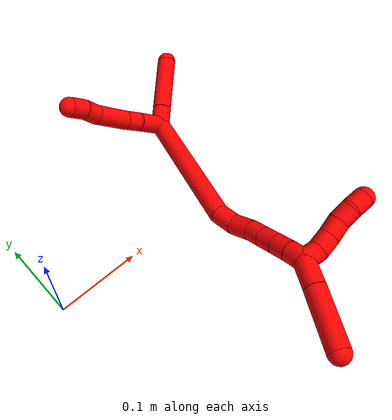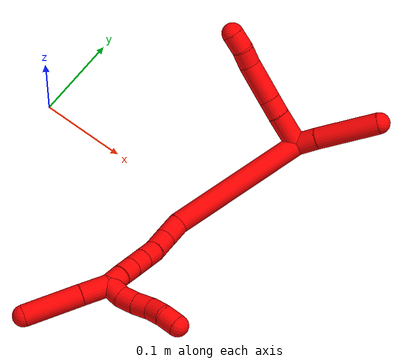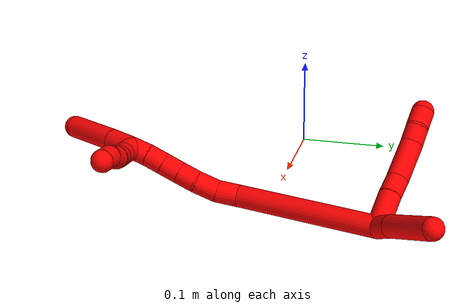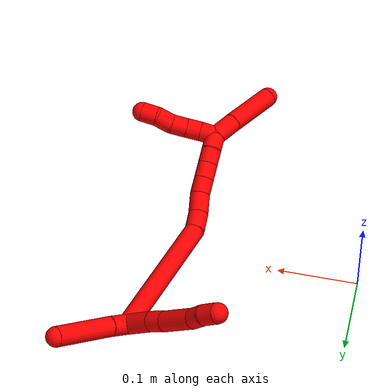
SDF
<sdf version="1.7">
 <world name="default">
  <model name="2">
   <static>0</static>
   <link name="2">
    <collision name="collision-cylinder-e_1_2_8">
     <pose>-0.006669 0.012753 -0.014196 -2.40967 -0.336212 0.83377</pose>
     <geometry><cylinder><radius>0.0125</radius><length>0.04043</length></cylinder></geometry>
     <surface>
      <friction><ode><mu>1.16</mu><mu2>1.16</mu2><slip1>0</slip1><slip2>0</slip2></ode></friction>
      <contact><ode><kp>1e+06</kp><kd>1</kd><max_vel>0</max_vel><min_depth>0.001</min_depth></ode></contact>
     </surface>
    </collision>
    <visual name="visual-cylinder-e_1_2_8">
     <pose>-0.006669 0.012753 -0.014196 -2.40967 -0.336212 0.83377</pose>
     <geometry><cylinder><radius>0.0125</radius><length>0.04043</length></cylinder></geometry>
     <material><ambient>1 0 0 1</ambient></material>
    </visual>
    <collision name="collision-cylinder-e_2_8_9">
     <pose>-0.016239 0.032765 -0.035764 -2.364 -0.273383 0.647894</pose>
     <geometry><cylinder><radius>0.0125</radius><length>0.02149</length></cylinder></geometry>
     <surface>
      <friction><ode><mu>1.16</mu><mu2>1.16</mu2><slip1>0</slip1><slip2>0</slip2></ode></friction>
      <contact><ode><kp>1e+06</kp><kd>1</kd><max_vel>0</max_vel><min_depth>0.001</min_depth></ode></contact>
     </surface>
    </collision>
    <visual name="visual-cylinder-e_2_8_9">
     <pose>-0.016239 0.032765 -0.035764 -2.364 -0.273383 0.647894</pose>
     <geometry><cylinder><radius>0.0125</radius><length>0.02149</length></cylinder></geometry>
     <material><ambient>1 0 0 1</ambient></material>
    </visual>
    <collision name="collision-cylinder-e_3_9_10">
     <pose>-0.027135 0.055095 -0.058893 -2.37839 -0.351425 0.833123</pose>
     <geometry><cylinder><radius>0.0125</radius><length>0.046447</length></cylinder></geometry>
     <surface>
      <friction><ode><mu>1.16</mu><mu2>1.16</mu2><slip1>0</slip1><slip2>0</slip2></ode></friction>
      <contact><ode><kp>1e+06</kp><kd>1</kd><max_vel>0</max_vel><min_depth>0.001</min_depth></ode></contact>
     </surface>
    </collision>
    <visual name="visual-cylinder-e_3_9_10">
     <pose>-0.027135 0.055095 -0.058893 -2.37839 -0.351425 0.833123</pose>
     <geometry><cylinder><radius>0.0125</radius><length>0.046447</length></cylinder></geometry>
     <material><ambient>1 0 0 1</ambient></material>
    </visual>
    <collision name="collision-cylinder-e_4_10_11">
     <pose>-0.040375 0.076419 -0.080661 -2.33662 -0.543874 1.15974</pose>
     <geometry><cylinder><radius>0.0125</radius><length>0.020275</length></cylinder></geometry>
     <surface>
      <friction><ode><mu>1.16</mu><mu2>1.16</mu2><slip1>0</slip1><slip2>0</slip2></ode></friction>
      <contact><ode><kp>1e+06</kp><kd>1</kd><max_vel>0</max_vel><min_depth>0.001</min_depth></ode></contact>
     </surface>
    </collision>
    <visual name="visual-cylinder-e_4_10_11">
     <pose>-0.040375 0.076419 -0.080661 -2.33662 -0.543874 1.15974</pose>
     <geometry><cylinder><radius>0.0125</radius><length>0.020275</length></cylinder></geometry>
     <material><ambient>1 0 0 1</ambient></material>
    </visual>
    <collision name="collision-cylinder-e_5_11_6">
     <pose>-0.049199 0.08928 -0.094263 -2.42522 -0.341697 0.863766</pose>
     <geometry><cylinder><radius>0.0125</radius><length>0.021359</length></cylinder></geometry>
     <surface>
      <friction><ode><mu>1.16</mu><mu2>1.16</mu2><slip1>0</slip1><slip2>0</slip2></ode></friction>
      <contact><ode><kp>1e+06</kp><kd>1</kd><max_vel>0</max_vel><min_depth>0.001</min_depth></ode></contact>
     </surface>
    </collision>
    <visual name="visual-cylinder-e_5_11_6">
     <pose>-0.049199 0.08928 -0.094263 -2.42522 -0.341697 0.863766</pose>
     <geometry><cylinder><radius>0.0125</radius><length>0.021359</length></cylinder></geometry>
     <material><ambient>1 0 0 1</ambient></material>
    </visual>
    <collision name="collision-cylinder-e_1_2_12">
     <pose>-0.006235 0.004633 0.010251 -0.424464 -0.506091 0.111325</pose>
     <geometry><cylinder><radius>0.0125</radius><length>0.025724</length></cylinder></geometry>
     <surface>
      <friction><ode><mu>1.16</mu><mu2>1.16</mu2><slip1>0</slip1><slip2>0</slip2></ode></friction>
      <contact><ode><kp>1e+06</kp><kd>1</kd><max_vel>0</max_vel><min_depth>0.001</min_depth></ode></contact>
     </surface>
    </collision>
    <visual name="visual-cylinder-e_1_2_12">
     <pose>-0.006235 0.004633 0.010251 -0.424464 -0.506091 0.111325</pose>
     <geometry><cylinder><radius>0.0125</radius><length>0.025724</length></cylinder></geometry>
     <material><ambient>1 0 0 1</ambient></material>
    </visual>
    <collision name="collision-cylinder-e_2_12_5">
     <pose>-0.028146 0.022216 0.05158 -0.394822 -0.435758 0.088507</pose>
     <geometry><cylinder><radius>0.0125</radius><length>0.074276</length></cylinder></geometry>
     <surface>
      <friction><ode><mu>1.16</mu><mu2>1.16</mu2><slip1>0</slip1><slip2>0</slip2></ode></friction>
      <contact><ode><kp>1e+06</kp><kd>1</kd><max_vel>0</max_vel><min_depth>0.001</min_depth></ode></contact>
     </surface>
    </collision>
    <visual name="visual-cylinder-e_2_12_5">
     <pose>-0.028146 0.022216 0.05158 -0.394822 -0.435758 0.088507</pose>
     <geometry><cylinder><radius>0.0125</radius><length>0.074276</length></cylinder></geometry>
     <material><ambient>1 0 0 1</ambient></material>
    </visual>
    <collision name="collision-cylinder-e_1_2_13">
     <pose>-0.005308 -0.061246 -0.056905 2.31948 -0.063409 -0.145264</pose>
     <geometry><cylinder><radius>0.0125</radius><length>0.16754</length></cylinder></geometry>
     <surface>
      <friction><ode><mu>1.16</mu><mu2>1.16</mu2><slip1>0</slip1><slip2>0</slip2></ode></friction>
      <contact><ode><kp>1e+06</kp><kd>1</kd><max_vel>0</max_vel><min_depth>0.001</min_depth></ode></contact>
     </surface>
    </collision>
    <visual name="visual-cylinder-e_1_2_13">
     <pose>-0.005308 -0.061246 -0.056905 2.31948 -0.063409 -0.145264</pose>
     <geometry><cylinder><radius>0.0125</radius><length>0.16754</length></cylinder></geometry>
     <material><ambient>1 0 0 1</ambient></material>
    </visual>
    <collision name="collision-cylinder-e_2_13_14">
     <pose>-0.014191 -0.133314 -0.119618 2.06324 -0.283221 -0.467836</pose>
     <geometry><cylinder><radius>0.0125</radius><length>0.025584</length></cylinder></geometry>
     <surface>
      <friction><ode><mu>1.16</mu><mu2>1.16</mu2><slip1>0</slip1><slip2>0</slip2></ode></friction>
      <contact><ode><kp>1e+06</kp><kd>1</kd><max_vel>0</max_vel><min_depth>0.001</min_depth></ode></contact>
     </surface>
    </collision>
    <visual name="visual-cylinder-e_2_13_14">
     <pose>-0.014191 -0.133314 -0.119618 2.06324 -0.283221 -0.467836</pose>
     <geometry><cylinder><radius>0.0125</radius><length>0.025584</length></cylinder></geometry>
     <material><ambient>1 0 0 1</ambient></material>
    </visual>
    <collision name="collision-cylinder-e_3_14_15">
     <pose>-0.024886 -0.15379 -0.130378 2.04489 -0.580742 -0.909922</pose>
     <geometry><cylinder><radius>0.0125</radius><length>0.025953</length></cylinder></geometry>
     <surface>
      <friction><ode><mu>1.16</mu><mu2>1.16</mu2><slip1>0</slip1><slip2>0</slip2></ode></friction>
      <contact><ode><kp>1e+06</kp><kd>1</kd><max_vel>0</max_vel><min_depth>0.001</min_depth></ode></contact>
     </surface>
    </collision>
    <visual name="visual-cylinder-e_3_14_15">
     <pose>-0.024886 -0.15379 -0.130378 2.04489 -0.580742 -0.909922</pose>
     <geometry><cylinder><radius>0.0125</radius><length>0.025953</length></cylinder></geometry>
     <material><ambient>1 0 0 1</ambient></material>
    </visual>
    <collision name="collision-cylinder-e_4_15_16">
     <pose>-0.037216 -0.170438 -0.140708 2.22611 -0.533512 -1.01289</pose>
     <geometry><cylinder><radius>0.0125</radius><length>0.020494</length></cylinder></geometry>
     <surface>
      <friction><ode><mu>1.16</mu><mu2>1.16</mu2><slip1>0</slip1><slip2>0</slip2></ode></friction>
      <contact><ode><kp>1e+06</kp><kd>1</kd><max_vel>0</max_vel><min_depth>0.001</min_depth></ode></contact>
     </surface>
    </collision>
    <visual name="visual-cylinder-e_4_15_16">
     <pose>-0.037216 -0.170438 -0.140708 2.22611 -0.533512 -1.01289</pose>
     <geometry><cylinder><radius>0.0125</radius><length>0.020494</length></cylinder></geometry>
     <material><ambient>1 0 0 1</ambient></material>
    </visual>
    <collision name="collision-cylinder-e_5_16_17">
     <pose>-0.047677 -0.184344 -0.15147 2.23282 -0.539836 -1.03068</pose>
     <geometry><cylinder><radius>0.0125</radius><length>0.020427</length></cylinder></geometry>
     <surface>
      <friction><ode><mu>1.16</mu><mu2>1.16</mu2><slip1>0</slip1><slip2>0</slip2></ode></friction>
      <contact><ode><kp>1e+06</kp><kd>1</kd><max_vel>0</max_vel><min_depth>0.001</min_depth></ode></contact>
     </surface>
    </collision>
    <visual name="visual-cylinder-e_5_16_17">
     <pose>-0.047677 -0.184344 -0.15147 2.23282 -0.539836 -1.03068</pose>
     <geometry><cylinder><radius>0.0125</radius><length>0.020427</length></cylinder></geometry>
     <material><ambient>1 0 0 1</ambient></material>
    </visual>
    <collision name="collision-cylinder-e_6_17_18">
     <pose>-0.058082 -0.19801 -0.162126 2.2333 -0.541613 -1.03418</pose>
     <geometry><cylinder><radius>0.0125</radius><length>0.020001</length></cylinder></geometry>
     <surface>
      <friction><ode><mu>1.16</mu><mu2>1.16</mu2><slip1>0</slip1><slip2>0</slip2></ode></friction>
      <contact><ode><kp>1e+06</kp><kd>1</kd><max_vel>0</max_vel><min_depth>0.001</min_depth></ode></contact>
     </surface>
    </collision>
    <visual name="visual-cylinder-e_6_17_18">
     <pose>-0.058082 -0.19801 -0.162126 2.2333 -0.541613 -1.03418</pose>
     <geometry><cylinder><radius>0.0125</radius><length>0.020001</length></cylinder></geometry>
     <material><ambient>1 0 0 1</ambient></material>
    </visual>
    <collision name="collision-cylinder-e_7_18_1">
     <pose>-0.067608 -0.212022 -0.172713 2.20314 -0.452294 -0.852051</pose>
     <geometry><cylinder><radius>0.0125</radius><length>0.02</length></cylinder></geometry>
     <surface>
      <friction><ode><mu>1.16</mu><mu2>1.16</mu2><slip1>0</slip1><slip2>0</slip2></ode></friction>
      <contact><ode><kp>1e+06</kp><kd>1</kd><max_vel>0</max_vel><min_depth>0.001</min_depth></ode></contact>
     </surface>
    </collision>
    <visual name="visual-cylinder-e_7_18_1">
     <pose>-0.067608 -0.212022 -0.172713 2.20314 -0.452294 -0.852051</pose>
     <geometry><cylinder><radius>0.0125</radius><length>0.02</length></cylinder></geometry>
     <material><ambient>1 0 0 1</ambient></material>
    </visual>
    <collision name="collision-cylinder-e_1_1_19">
     <pose>-0.071942 -0.227997 -0.191808 2.57741 0.002274 0.007845</pose>
     <geometry><cylinder><radius>0.0125</radius><length>0.032611</length></cylinder></geometry>
     <surface>
      <friction><ode><mu>1.16</mu><mu2>1.16</mu2><slip1>0</slip1><slip2>0</slip2></ode></friction>
      <contact><ode><kp>1e+06</kp><kd>1</kd><max_vel>0</max_vel><min_depth>0.001</min_depth></ode></contact>
     </surface>
    </collision>
    <visual name="visual-cylinder-e_1_1_19">
     <pose>-0.071942 -0.227997 -0.191808 2.57741 0.002274 0.007845</pose>
     <geometry><cylinder><radius>0.0125</radius><length>0.032611</length></cylinder></geometry>
     <material><ambient>1 0 0 1</ambient></material>
    </visual>
    <collision name="collision-cylinder-e_2_19_4">
     <pose>-0.070526 -0.254904 -0.233917 2.57086 0.040936 0.139329</pose>
     <geometry><cylinder><radius>0.0125</radius><length>0.067389</length></cylinder></geometry>
     <surface>
      <friction><ode><mu>1.16</mu><mu2>1.16</mu2><slip1>0</slip1><slip2>0</slip2></ode></friction>
      <contact><ode><kp>1e+06</kp><kd>1</kd><max_vel>0</max_vel><min_depth>0.001</min_depth></ode></contact>
     </surface>
    </collision>
    <visual name="visual-cylinder-e_2_19_4">
     <pose>-0.070526 -0.254904 -0.233917 2.57086 0.040936 0.139329</pose>
     <geometry><cylinder><radius>0.0125</radius><length>0.067389</length></cylinder></geometry>
     <material><ambient>1 0 0 1</ambient></material>
    </visual>
    <collision name="collision-cylinder-e_1_1_20">
     <pose>-0.075205 -0.22458 -0.170189 0.594657 -0.32848 -0.101478</pose>
     <geometry><cylinder><radius>0.0125</radius><length>0.02</length></cylinder></geometry>
     <surface>
      <friction><ode><mu>1.16</mu><mu2>1.16</mu2><slip1>0</slip1><slip2>0</slip2></ode></friction>
      <contact><ode><kp>1e+06</kp><kd>1</kd><max_vel>0</max_vel><min_depth>0.001</min_depth></ode></contact>
     </surface>
    </collision>
    <visual name="visual-cylinder-e_1_1_20">
     <pose>-0.075205 -0.22458 -0.170189 0.594657 -0.32848 -0.101478</pose>
     <geometry><cylinder><radius>0.0125</radius><length>0.02</length></cylinder></geometry>
     <material><ambient>1 0 0 1</ambient></material>
    </visual>
    <collision name="collision-cylinder-e_2_20_21">
     <pose>-0.082887 -0.232649 -0.153834 0.31417 -0.461917 -0.074458</pose>
     <geometry><cylinder><radius>0.0125</radius><length>0.02</length></cylinder></geometry>
     <surface>
      <friction><ode><mu>1.16</mu><mu2>1.16</mu2><slip1>0</slip1><slip2>0</slip2></ode></friction>
      <contact><ode><kp>1e+06</kp><kd>1</kd><max_vel>0</max_vel><min_depth>0.001</min_depth></ode></contact>
     </surface>
    </collision>
    <visual name="visual-cylinder-e_2_20_21">
     <pose>-0.082887 -0.232649 -0.153834 0.31417 -0.461917 -0.074458</pose>
     <geometry><cylinder><radius>0.0125</radius><length>0.02</length></cylinder></geometry>
     <material><ambient>1 0 0 1</ambient></material>
    </visual>
    <collision name="collision-cylinder-e_3_21_22">
     <pose>-0.092493 -0.237262 -0.136949 0.217041 -0.540873 -0.060389</pose>
     <geometry><cylinder><radius>0.0125</radius><length>0.02</length></cylinder></geometry>
     <surface>
      <friction><ode><mu>1.16</mu><mu2>1.16</mu2><slip1>0</slip1><slip2>0</slip2></ode></friction>
      <contact><ode><kp>1e+06</kp><kd>1</kd><max_vel>0</max_vel><min_depth>0.001</min_depth></ode></contact>
     </surface>
    </collision>
    <visual name="visual-cylinder-e_3_21_22">
     <pose>-0.092493 -0.237262 -0.136949 0.217041 -0.540873 -0.060389</pose>
     <geometry><cylinder><radius>0.0125</radius><length>0.02</length></cylinder></geometry>
     <material><ambient>1 0 0 1</ambient></material>
    </visual>
    <collision name="collision-cylinder-e_4_22_23">
     <pose>-0.104047 -0.242355 -0.121619 0.436677 -0.695251 -0.160444</pose>
     <geometry><cylinder><radius>0.0125</radius><length>0.02</length></cylinder></geometry>
     <surface>
      <friction><ode><mu>1.16</mu><mu2>1.16</mu2><slip1>0</slip1><slip2>0</slip2></ode></friction>
      <contact><ode><kp>1e+06</kp><kd>1</kd><max_vel>0</max_vel><min_depth>0.001</min_depth></ode></contact>
     </surface>
    </collision>
    <visual name="visual-cylinder-e_4_22_23">
     <pose>-0.104047 -0.242355 -0.121619 0.436677 -0.695251 -0.160444</pose>
     <geometry><cylinder><radius>0.0125</radius><length>0.02</length></cylinder></geometry>
     <material><ambient>1 0 0 1</ambient></material>
    </visual>
    <collision name="collision-cylinder-e_5_23_3">
     <pose>-0.114418 -0.249932 -0.106565 0.491041 -0.407618 -0.103485</pose>
     <geometry><cylinder><radius>0.0125</radius><length>0.02</length></cylinder></geometry>
     <surface>
      <friction><ode><mu>1.16</mu><mu2>1.16</mu2><slip1>0</slip1><slip2>0</slip2></ode></friction>
      <contact><ode><kp>1e+06</kp><kd>1</kd><max_vel>0</max_vel><min_depth>0.001</min_depth></ode></contact>
     </surface>
    </collision>
    <visual name="visual-cylinder-e_5_23_3">
     <pose>-0.114418 -0.249932 -0.106565 0.491041 -0.407618 -0.103485</pose>
     <geometry><cylinder><radius>0.0125</radius><length>0.02</length></cylinder></geometry>
     <material><ambient>1 0 0 1</ambient></material>
    </visual>
    <collision name="collision-sphere-3">
     <pose>-0.118382 -0.254261 -0.098469 0 -0 0</pose>
     <geometry><sphere><radius>0.0125</radius></sphere></geometry>
     <surface>
      <friction><ode><mu>1.16</mu><mu2>1.16</mu2><slip1>0</slip1><slip2>0</slip2></ode></friction>
      <contact><ode><kp>1e+06</kp><kd>1</kd><max_vel>0</max_vel><min_depth>0.001</min_depth></ode></contact>
     </surface>
    </collision>
    <visual name="visual-sphere-3">
     <pose>-0.118382 -0.254261 -0.098469 0 -0 0</pose>
     <geometry><sphere><radius>0.0125</radius></sphere></geometry>
     <material><ambient>1 0 0 1</ambient></material>
    </visual>
    <collision name="collision-sphere-23">
     <pose>-0.110453 -0.245603 -0.114661 0 -0 0</pose>
     <geometry><sphere><radius>0.0125</radius></sphere></geometry>
     <surface>
      <friction><ode><mu>1.16</mu><mu2>1.16</mu2><slip1>0</slip1><slip2>0</slip2></ode></friction>
      <contact><ode><kp>1e+06</kp><kd>1</kd><max_vel>0</max_vel><min_depth>0.001</min_depth></ode></contact>
     </surface>
    </collision>
    <visual name="visual-sphere-23">
     <pose>-0.110453 -0.245603 -0.114661 0 -0 0</pose>
     <geometry><sphere><radius>0.0125</radius></sphere></geometry>
     <material><ambient>1 0 0 1</ambient></material>
    </visual>
    <collision name="collision-sphere-22">
     <pose>-0.097642 -0.239108 -0.128578 0 -0 0</pose>
     <geometry><sphere><radius>0.0125</radius></sphere></geometry>
     <surface>
      <friction><ode><mu>1.16</mu><mu2>1.16</mu2><slip1>0</slip1><slip2>0</slip2></ode></friction>
      <contact><ode><kp>1e+06</kp><kd>1</kd><max_vel>0</max_vel><min_depth>0.001</min_depth></ode></contact>
     </surface>
    </collision>
    <visual name="visual-sphere-22">
     <pose>-0.097642 -0.239108 -0.128578 0 -0 0</pose>
     <geometry><sphere><radius>0.0125</radius></sphere></geometry>
     <material><ambient>1 0 0 1</ambient></material>
    </visual>
    <collision name="collision-sphere-21">
     <pose>-0.087344 -0.235416 -0.145321 0 -0 0</pose>
     <geometry><sphere><radius>0.0125</radius></sphere></geometry>
     <surface>
      <friction><ode><mu>1.16</mu><mu2>1.16</mu2><slip1>0</slip1><slip2>0</slip2></ode></friction>
      <contact><ode><kp>1e+06</kp><kd>1</kd><max_vel>0</max_vel><min_depth>0.001</min_depth></ode></contact>
     </surface>
    </collision>
    <visual name="visual-sphere-21">
     <pose>-0.087344 -0.235416 -0.145321 0 -0 0</pose>
     <geometry><sphere><radius>0.0125</radius></sphere></geometry>
     <material><ambient>1 0 0 1</ambient></material>
    </visual>
    <collision name="collision-sphere-20">
     <pose>-0.078431 -0.229883 -0.162348 0 -0 0</pose>
     <geometry><sphere><radius>0.0125</radius></sphere></geometry>
     <surface>
      <friction><ode><mu>1.16</mu><mu2>1.16</mu2><slip1>0</slip1><slip2>0</slip2></ode></friction>
      <contact><ode><kp>1e+06</kp><kd>1</kd><max_vel>0</max_vel><min_depth>0.001</min_depth></ode></contact>
     </surface>
    </collision>
    <visual name="visual-sphere-20">
     <pose>-0.078431 -0.229883 -0.162348 0 -0 0</pose>
     <geometry><sphere><radius>0.0125</radius></sphere></geometry>
     <material><ambient>1 0 0 1</ambient></material>
    </visual>
    <collision name="collision-sphere-4">
     <pose>-0.069147 -0.273092 -0.262247 0 -0 0</pose>
     <geometry><sphere><radius>0.0125</radius></sphere></geometry>
     <surface>
      <friction><ode><mu>1.16</mu><mu2>1.16</mu2><slip1>0</slip1><slip2>0</slip2></ode></friction>
      <contact><ode><kp>1e+06</kp><kd>1</kd><max_vel>0</max_vel><min_depth>0.001</min_depth></ode></contact>
     </surface>
    </collision>
    <visual name="visual-sphere-4">
     <pose>-0.069147 -0.273092 -0.262247 0 -0 0</pose>
     <geometry><sphere><radius>0.0125</radius></sphere></geometry>
     <material><ambient>1 0 0 1</ambient></material>
    </visual>
    <collision name="collision-sphere-6">
     <pose>-0.052777 0.095887 -0.101852 0 -0 0</pose>
     <geometry><sphere><radius>0.0125</radius></sphere></geometry>
     <surface>
      <friction><ode><mu>1.16</mu><mu2>1.16</mu2><slip1>0</slip1><slip2>0</slip2></ode></friction>
      <contact><ode><kp>1e+06</kp><kd>1</kd><max_vel>0</max_vel><min_depth>0.001</min_depth></ode></contact>
     </surface>
    </collision>
    <visual name="visual-sphere-6">
     <pose>-0.052777 0.095887 -0.101852 0 -0 0</pose>
     <geometry><sphere><radius>0.0125</radius></sphere></geometry>
     <material><ambient>1 0 0 1</ambient></material>
    </visual>
    <collision name="collision-sphere-11">
     <pose>-0.04562 0.082672 -0.086674 0 -0 0</pose>
     <geometry><sphere><radius>0.0125</radius></sphere></geometry>
     <surface>
      <friction><ode><mu>1.16</mu><mu2>1.16</mu2><slip1>0</slip1><slip2>0</slip2></ode></friction>
      <contact><ode><kp>1e+06</kp><kd>1</kd><max_vel>0</max_vel><min_depth>0.001</min_depth></ode></contact>
     </surface>
    </collision>
    <visual name="visual-sphere-11">
     <pose>-0.04562 0.082672 -0.086674 0 -0 0</pose>
     <geometry><sphere><radius>0.0125</radius></sphere></geometry>
     <material><ambient>1 0 0 1</ambient></material>
    </visual>
    <collision name="collision-sphere-10">
     <pose>-0.035129 0.070167 -0.074649 0 -0 0</pose>
     <geometry><sphere><radius>0.0125</radius></sphere></geometry>
     <surface>
      <friction><ode><mu>1.16</mu><mu2>1.16</mu2><slip1>0</slip1><slip2>0</slip2></ode></friction>
      <contact><ode><kp>1e+06</kp><kd>1</kd><max_vel>0</max_vel><min_depth>0.001</min_depth></ode></contact>
     </surface>
    </collision>
    <visual name="visual-sphere-10">
     <pose>-0.035129 0.070167 -0.074649 0 -0 0</pose>
     <geometry><sphere><radius>0.0125</radius></sphere></geometry>
     <material><ambient>1 0 0 1</ambient></material>
    </visual>
    <collision name="collision-sphere-9">
     <pose>-0.01914 0.040023 -0.043136 0 -0 0</pose>
     <geometry><sphere><radius>0.0125</radius></sphere></geometry>
     <surface>
      <friction><ode><mu>1.16</mu><mu2>1.16</mu2><slip1>0</slip1><slip2>0</slip2></ode></friction>
      <contact><ode><kp>1e+06</kp><kd>1</kd><max_vel>0</max_vel><min_depth>0.001</min_depth></ode></contact>
     </surface>
    </collision>
    <visual name="visual-sphere-9">
     <pose>-0.01914 0.040023 -0.043136 0 -0 0</pose>
     <geometry><sphere><radius>0.0125</radius></sphere></geometry>
     <material><ambient>1 0 0 1</ambient></material>
    </visual>
    <collision name="collision-sphere-2">
     <geometry><sphere><radius>0.0125</radius></sphere></geometry>
     <surface>
      <friction><ode><mu>1.16</mu><mu2>1.16</mu2><slip1>0</slip1><slip2>0</slip2></ode></friction>
      <contact><ode><kp>1e+06</kp><kd>1</kd><max_vel>0</max_vel><min_depth>0.001</min_depth></ode></contact>
     </surface>
    </collision>
    <visual name="visual-sphere-2">
     <geometry><sphere><radius>0.0125</radius></sphere></geometry>
     <material><ambient>1 0 0 1</ambient></material>
    </visual>
    <collision name="collision-sphere-19">
     <pose>-0.071904 -0.236716 -0.205587 0 -0 0</pose>
     <geometry><sphere><radius>0.0125</radius></sphere></geometry>
     <surface>
      <friction><ode><mu>1.16</mu><mu2>1.16</mu2><slip1>0</slip1><slip2>0</slip2></ode></friction>
      <contact><ode><kp>1e+06</kp><kd>1</kd><max_vel>0</max_vel><min_depth>0.001</min_depth></ode></contact>
     </surface>
    </collision>
    <visual name="visual-sphere-19">
     <pose>-0.071904 -0.236716 -0.205587 0 -0 0</pose>
     <geometry><sphere><radius>0.0125</radius></sphere></geometry>
     <material><ambient>1 0 0 1</ambient></material>
    </visual>
    <collision name="collision-sphere-8">
     <pose>-0.013338 0.025506 -0.028391 0 -0 0</pose>
     <geometry><sphere><radius>0.0125</radius></sphere></geometry>
     <surface>
      <friction><ode><mu>1.16</mu><mu2>1.16</mu2><slip1>0</slip1><slip2>0</slip2></ode></friction>
      <contact><ode><kp>1e+06</kp><kd>1</kd><max_vel>0</max_vel><min_depth>0.001</min_depth></ode></contact>
     </surface>
    </collision>
    <visual name="visual-sphere-8">
     <pose>-0.013338 0.025506 -0.028391 0 -0 0</pose>
     <geometry><sphere><radius>0.0125</radius></sphere></geometry>
     <material><ambient>1 0 0 1</ambient></material>
    </visual>
    <collision name="collision-sphere-12">
     <pose>-0.01247 0.009266 0.020502 0 -0 0</pose>
     <geometry><sphere><radius>0.0125</radius></sphere></geometry>
     <surface>
      <friction><ode><mu>1.16</mu><mu2>1.16</mu2><slip1>0</slip1><slip2>0</slip2></ode></friction>
      <contact><ode><kp>1e+06</kp><kd>1</kd><max_vel>0</max_vel><min_depth>0.001</min_depth></ode></contact>
     </surface>
    </collision>
    <visual name="visual-sphere-12">
     <pose>-0.01247 0.009266 0.020502 0 -0 0</pose>
     <geometry><sphere><radius>0.0125</radius></sphere></geometry>
     <material><ambient>1 0 0 1</ambient></material>
    </visual>
    <collision name="collision-sphere-5">
     <pose>-0.043822 0.035166 0.082657 0 -0 0</pose>
     <geometry><sphere><radius>0.0125</radius></sphere></geometry>
     <surface>
      <friction><ode><mu>1.16</mu><mu2>1.16</mu2><slip1>0</slip1><slip2>0</slip2></ode></friction>
      <contact><ode><kp>1e+06</kp><kd>1</kd><max_vel>0</max_vel><min_depth>0.001</min_depth></ode></contact>
     </surface>
    </collision>
    <visual name="visual-sphere-5">
     <pose>-0.043822 0.035166 0.082657 0 -0 0</pose>
     <geometry><sphere><radius>0.0125</radius></sphere></geometry>
     <material><ambient>1 0 0 1</ambient></material>
    </visual>
    <collision name="collision-sphere-13">
     <pose>-0.010617 -0.122491 -0.113811 0 -0 0</pose>
     <geometry><sphere><radius>0.0125</radius></sphere></geometry>
     <surface>
      <friction><ode><mu>1.16</mu><mu2>1.16</mu2><slip1>0</slip1><slip2>0</slip2></ode></friction>
      <contact><ode><kp>1e+06</kp><kd>1</kd><max_vel>0</max_vel><min_depth>0.001</min_depth></ode></contact>
     </surface>
    </collision>
    <visual name="visual-sphere-13">
     <pose>-0.010617 -0.122491 -0.113811 0 -0 0</pose>
     <geometry><sphere><radius>0.0125</radius></sphere></geometry>
     <material><ambient>1 0 0 1</ambient></material>
    </visual>
    <collision name="collision-sphere-14">
     <pose>-0.017766 -0.144137 -0.125425 0 -0 0</pose>
     <geometry><sphere><radius>0.0125</radius></sphere></geometry>
     <surface>
      <friction><ode><mu>1.16</mu><mu2>1.16</mu2><slip1>0</slip1><slip2>0</slip2></ode></friction>
      <contact><ode><kp>1e+06</kp><kd>1</kd><max_vel>0</max_vel><min_depth>0.001</min_depth></ode></contact>
     </surface>
    </collision>
    <visual name="visual-sphere-14">
     <pose>-0.017766 -0.144137 -0.125425 0 -0 0</pose>
     <geometry><sphere><radius>0.0125</radius></sphere></geometry>
     <material><ambient>1 0 0 1</ambient></material>
    </visual>
    <collision name="collision-sphere-15">
     <pose>-0.032005 -0.163442 -0.135331 0 -0 0</pose>
     <geometry><sphere><radius>0.0125</radius></sphere></geometry>
     <surface>
      <friction><ode><mu>1.16</mu><mu2>1.16</mu2><slip1>0</slip1><slip2>0</slip2></ode></friction>
      <contact><ode><kp>1e+06</kp><kd>1</kd><max_vel>0</max_vel><min_depth>0.001</min_depth></ode></contact>
     </surface>
    </collision>
    <visual name="visual-sphere-15">
     <pose>-0.032005 -0.163442 -0.135331 0 -0 0</pose>
     <geometry><sphere><radius>0.0125</radius></sphere></geometry>
     <material><ambient>1 0 0 1</ambient></material>
    </visual>
    <collision name="collision-sphere-16">
     <pose>-0.042428 -0.177433 -0.146084 0 -0 0</pose>
     <geometry><sphere><radius>0.0125</radius></sphere></geometry>
     <surface>
      <friction><ode><mu>1.16</mu><mu2>1.16</mu2><slip1>0</slip1><slip2>0</slip2></ode></friction>
      <contact><ode><kp>1e+06</kp><kd>1</kd><max_vel>0</max_vel><min_depth>0.001</min_depth></ode></contact>
     </surface>
    </collision>
    <visual name="visual-sphere-16">
     <pose>-0.042428 -0.177433 -0.146084 0 -0 0</pose>
     <geometry><sphere><radius>0.0125</radius></sphere></geometry>
     <material><ambient>1 0 0 1</ambient></material>
    </visual>
    <collision name="collision-sphere-17">
     <pose>-0.052927 -0.191254 -0.156855 0 -0 0</pose>
     <geometry><sphere><radius>0.0125</radius></sphere></geometry>
     <surface>
      <friction><ode><mu>1.16</mu><mu2>1.16</mu2><slip1>0</slip1><slip2>0</slip2></ode></friction>
      <contact><ode><kp>1e+06</kp><kd>1</kd><max_vel>0</max_vel><min_depth>0.001</min_depth></ode></contact>
     </surface>
    </collision>
    <visual name="visual-sphere-17">
     <pose>-0.052927 -0.191254 -0.156855 0 -0 0</pose>
     <geometry><sphere><radius>0.0125</radius></sphere></geometry>
     <material><ambient>1 0 0 1</ambient></material>
    </visual>
    <collision name="collision-sphere-18">
     <pose>-0.063238 -0.204767 -0.167397 0 -0 0</pose>
     <geometry><sphere><radius>0.0125</radius></sphere></geometry>
     <surface>
      <friction><ode><mu>1.16</mu><mu2>1.16</mu2><slip1>0</slip1><slip2>0</slip2></ode></friction>
      <contact><ode><kp>1e+06</kp><kd>1</kd><max_vel>0</max_vel><min_depth>0.001</min_depth></ode></contact>
     </surface>
    </collision>
    <visual name="visual-sphere-18">
     <pose>-0.063238 -0.204767 -0.167397 0 -0 0</pose>
     <geometry><sphere><radius>0.0125</radius></sphere></geometry>
     <material><ambient>1 0 0 1</ambient></material>
    </visual>
    <collision name="collision-sphere-1">
     <pose>-0.071979 -0.219278 -0.178029 0 -0 0</pose>
     <geometry><sphere><radius>0.0125</radius></sphere></geometry>
     <surface>
      <friction><ode><mu>1.16</mu><mu2>1.16</mu2><slip1>0</slip1><slip2>0</slip2></ode></friction>
      <contact><ode><kp>1e+06</kp><kd>1</kd><max_vel>0</max_vel><min_depth>0.001</min_depth></ode></contact>
     </surface>
    </collision>
    <visual name="visual-sphere-1">
     <pose>-0.071979 -0.219278 -0.178029 0 -0 0</pose>
     <geometry><sphere><radius>0.0125</radius></sphere></geometry>
     <material><ambient>1 0 0 1</ambient></material>
    </visual>
    <inertial>
     <pose>-0.03817 -0.096622 -0.090781 0 -0 0</pose>
     <mass>0.75</mass>
     <inertia>
      <ixx>0.000428</ixx>
      <ixy>0</ixy>
      <ixz>0</ixz>
      <iyy>-0.000313</iyy>
      <iyz>0</iyz>
      <izz>0.000332</izz>
     </inertia>
    </inertial>
   </link>
   <pose>0.25774 0.129215 0.012149 2.16978 1.274 2.6322</pose>
  </model>
 </world>
</sdf>
